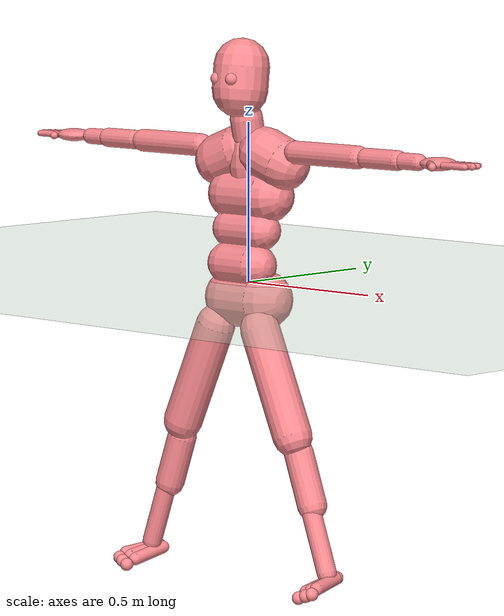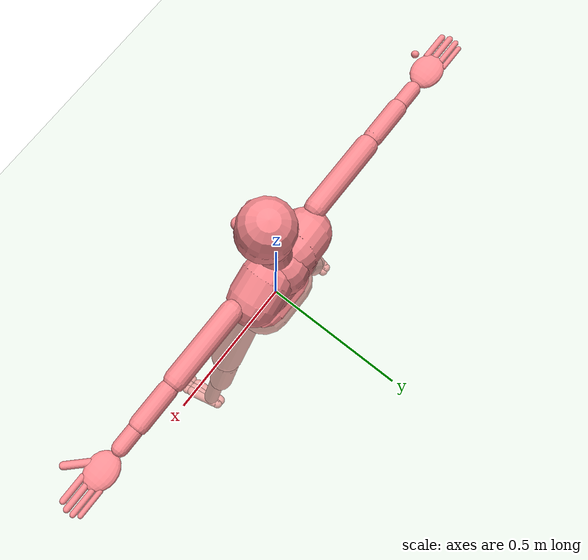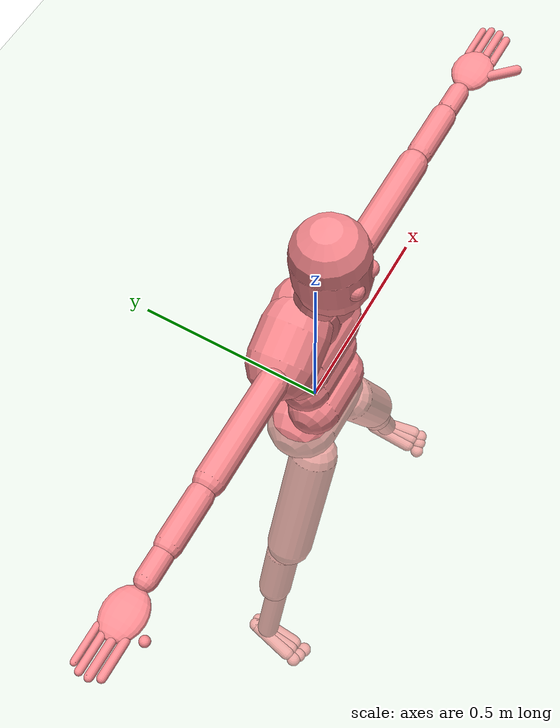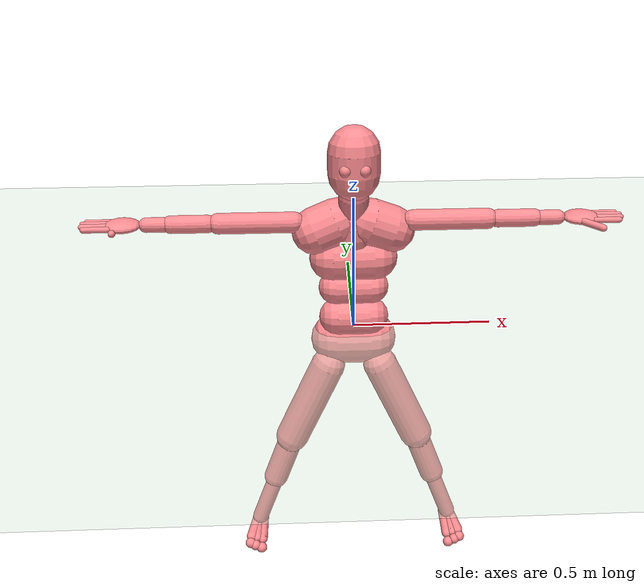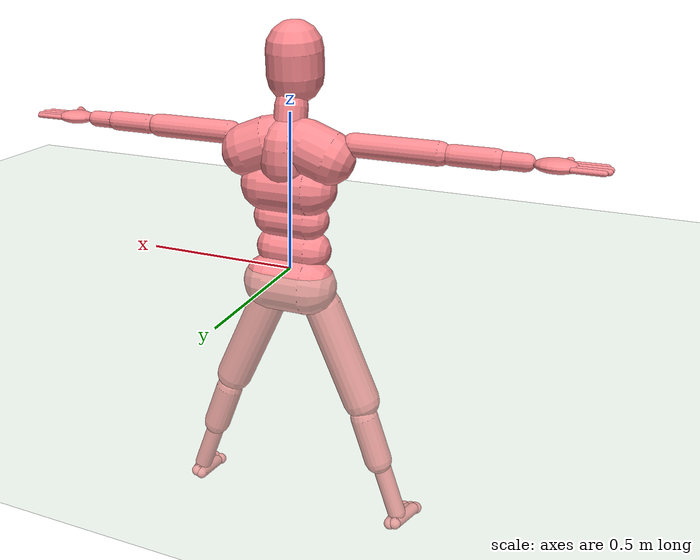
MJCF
<?xml version='1.0' encoding='utf-8'?>
<mujoco model="humanoid">
  <include file="./common/materials.xml" /><compiler angle="radian" inertiafromgeom="false" coordinate="local" />
  <option timestep="0.00222222" />
  <size nuser_body="3" />
  <statistic extent="3" center="0 0 1" />
  <default class="main">
    <joint limited="true" solimplimit="0 0.99 0.01 0.5 2" />
    <geom contype="7" conaffinity="7" condim="1" margin="0.001" material="self" rgba="0.98 0.54 0.56 1" />
  </default>
  <worldbody>
    <geom name="floor" size="121.43 121.43 0.242861" type="plane" condim="3" friction="1 0.1 0.1" material="grid_new" rgba="0.8 0.9 0.8 1" />
    <camera name="back" pos="0 3 2.4" quat="0 0 0.525731 0.850651" mode="trackcom" />
    <camera name="side" pos="-3 0 2.4" quat="0.601501 0.371748 -0.371748 -0.601501" mode="trackcom" />
    <light name="tracking_light" pos="0 0 7" dir="0 0 -1" mode="trackcom" />
    <body name="root" pos="0 0 0" quat="0.707107 0.707107 0 0">
      <joint name="root" limited="false" type="free" />
      <geom name="root_geom" size="0.0933877 0.0622584" pos="0 -0.051882 0" quat="0.707107 0 -0.707107 0" type="capsule" />
      <body name="lhipjoint" pos="0 0 0">
        <geom name="lhipjoint" size="0.00830112 0.0228281" pos="0.0529197 -0.0477315 0.025941" quat="0.5708 -0.566602 -0.594264 0" type="capsule" />
        <body name="lfemur" pos="0.105839 -0.0954629 0.051882" quat="0.985255 0 0 0.17109">
          <joint name="lfemur_z" pos="0 0 0" axis="0 0 1" range="-1.0472 1.22173" />
          <joint name="lfemur_y" pos="0 0 0" axis="0 1 0" range="-1.22173 1.22173" />
          <joint name="lfemur_x" pos="0 0 0" axis="1 0 0" range="-2.79253 0.349066" />
          <geom name="lfemur" size="0.0622584 0.176399" pos="-0.0103764 -0.210094 0" quat="0.700007 -0.700007 -0.122801 -0.0700007" type="capsule" />
          <body name="ltibia" pos="0 -0.420187 0">
            <joint name="ltibia_x" pos="0 0 0" axis="1 0 0" range="0.0174533 2.96706" />
            <geom name="ltibia" size="0.0311292 0.189433" pos="0 -0.210481 0" quat="0.696471 -0.696471 -0.122181 -0.122181" type="capsule" />
            <geom name="lcalf" size="0.0466938 0.0830112" pos="0 -0.103764 -0.0103764" quat="0.696471 -0.696471 -0.122181 -0.122181" type="capsule" />
            <body name="lfoot" pos="0 -0.420964 0" quat="0.707107 -0.707107 0 0">
              <joint name="lfoot_z" pos="0 0 0" axis="0 0 1" range="-1.22173 0.349066" />
              <joint name="lfoot_y" pos="0 0 0" axis="0 -1 0" range="-0.785398 0.785398" />
              <joint name="lfoot_x" pos="0 0 0" axis="1 0 0" range="-0.785398 1.5708" />
              <geom name="lfoot0" size="0.0207528 0.0622584" pos="-0.0207528 -0.0238657 -0.0103764" quat="0.64269 0.765928 -0.0112182 -0.0133693" type="capsule" />
              <geom name="lfoot1" size="0.0207528 0.0622584" pos="0 -0.0238657 -0.0103764" quat="0.642788 0.766044 0 0" type="capsule" />
              <geom name="lfoot2" size="0.0207528 0.0622584" pos="0.0103764 -0.0238657 -0.0103764" quat="0.640342 0.763129 0.0560226 0.0667652" type="capsule" />
              <body name="ltoes" pos="0 -0.110376 -0.0236329">
                <geom name="ltoes0" size="0.0207528" pos="-0.025941 -0.0103764 -0.0103764" />
                <geom name="ltoes1" size="0.0207528" pos="0 -0.0051882 -0.0103764" />
                <geom name="ltoes2" size="0.0207528" pos="0.0207528 0.00103764 -0.0103764" />
              </body>
            <inertial pos="-0.0207528 -0.0238657 -0.0103764" mass="1.0875000000000001" diaginertia="0.0009510698093295147 0.00047553490466475723 0.0009510698093295145" quat="0.6427857572997792 0.7660421185293779 0.0015669716542881045 0.0018674719293032488" /></body>
          <inertial pos="0.0 -0.197788989 7.045481420497879e-19" mass="3.4875" diaginertia="0.011975831051003232 0.005707019819504555 0.011975831051003232" quat="1.0 0.0 0.0 0.0" /></body>
        <inertial pos="-0.011250054632656874 -0.19830821611815216 -0.00012031458141784383" mass="7.5" diaginertia="0.02539535221798813 0.025395352217988127 0.014535406389599995" quat="0.4978262823699484 0.45432009147272157 0.5371249943756057 -0.5072070459713073" /></body>
      </body>
      <body name="rhipjoint" pos="0 0 0">
        <geom name="rhipjoint" size="0.00830112 0.0228281" pos="-0.0529197 -0.0477315 0.025941" quat="0.574856 -0.547594 0.608014 0" type="capsule" />
        <body name="rfemur" pos="-0.105839 -0.0954629 0.051882" quat="0.985255 0 0 -0.17109">
          <joint name="rfemur_z" pos="0 0 0" axis="0 0 1" range="-1.22173 1.0472" />
          <joint name="rfemur_y" pos="0 0 0" axis="0 1 0" range="-1.22173 1.22173" />
          <joint name="rfemur_x" pos="0 0 0" axis="1 0 0" range="-2.79253 0.349066" />
          <geom name="rfemur" size="0.0622584 0.176399" pos="0.0103764 -0.210094 0" quat="0.700007 -0.700007 0.122801 0.0700007" type="capsule" />
          <body name="rtibia" pos="0 -0.420187 0">
            <joint name="rtibia_x" pos="0 0 0" axis="1 0 0" range="0.0174533 2.96706" />
            <geom name="rtibia" size="0.0311292 0.189433" pos="0 -0.210481 0" quat="0.696471 -0.696471 0.122181 0.122181" type="capsule" />
            <geom name="rcalf" size="0.0466938 0.0830112" pos="0 -0.103764 -0.0103764" quat="0.696471 -0.696471 -0.122181 -0.122181" type="capsule" />
            <body name="rfoot" pos="0 -0.420964 0" quat="0.707107 -0.707107 0 0">
              <joint name="rfoot_z" pos="0 0 0" axis="0 0 1" range="-0.349066 1.22173" />
              <joint name="rfoot_y" pos="0 0 0" axis="0 -1 0" range="-0.785398 0.785398" />
              <joint name="rfoot_x" pos="0 0 0" axis="1 0 0" range="-0.785398 1.5708" />
              <geom name="rfoot0" size="0.0207528 0.0622584" pos="0.0207528 -0.0238657 -0.0103764" quat="0.64269 0.765928 0.0112182 0.0133693" type="capsule" />
              <geom name="rfoot1" size="0.0207528 0.0622584" pos="0 -0.0238657 -0.0103764" quat="0.642788 0.766044 0 0" type="capsule" />
              <geom name="rfoot2" size="0.0207528 0.0622584" pos="-0.0103764 -0.0238657 -0.0103764" quat="0.640342 0.763129 -0.0560226 -0.0667652" type="capsule" />
              <body name="rtoes" pos="0 -0.110376 -0.0236329">
                <geom name="rtoes0" size="0.0207528" pos="0.025941 -0.0103764 -0.0103764" />
                <geom name="rtoes1" size="0.0207528" pos="0 -0.0051882 -0.0103764" />
                <geom name="rtoes2" size="0.0207528" pos="-0.0207528 0.00103764 -0.0103764" />
              </body>
            <inertial pos="0.0207528 -0.0238657 -0.0103764" mass="1.0875000000000001" diaginertia="0.0009510698093295147 0.00047553490466475723 0.0009510698093295145" quat="0.6427857572997792 0.7660421185293779 -0.0015669716542881045 -0.0018674719293032488" /></body>
          <inertial pos="0.0 -0.197788989 7.045481420497879e-19" mass="3.4875" diaginertia="0.011975831051003232 0.005707019819504555 0.011975831051003232" quat="1.0 -1.1102230246251565e-16 -0.0 0.0" /></body>
        <inertial pos="0.011250054632656874 -0.19830821611815216 -0.00012031458141784383" mass="7.5" diaginertia="0.02539535221798813 0.025395352217988127 0.014535406389599995" quat="0.5072070459713073 0.5371249943756057 0.45432009147272157 -0.4978262823699484" /></body>
      </body>
      <body name="lowerback" pos="0 0 0">
        <geom name="lowerback" size="0.0674466 0.0570702" pos="0 0.0581079 0.0311292" quat="0.707107 0 0.707107 0" type="capsule" />
        <body name="upperback" pos="0 0.103764 -0.0103764">
          <joint name="upperback_z" pos="0 0 0" axis="0 0 1" range="-0.523599 0.523599" />
          <joint name="upperback_y" pos="0 0 0" axis="0 1 0" range="-0.523599 0.523599" />
          <joint name="upperback_x" pos="0 0 0" axis="1 0 0" range="-0.349066 0.785398" />
          <geom name="upperback" size="0.0622584 0.0622584" pos="0 0.0622584 0.0207528" quat="0.707107 0 0.707107 0" type="capsule" />
          <body name="thorax" pos="0.00053182 0.117834 0.000972084">
            <geom name="thorax" size="0.0830112 0.0726348" pos="0 0.051882 0" quat="0.707107 0 0.707107 0" type="capsule" />
            <body name="lowerneck" pos="0 0.118234 0.00485654">
              <joint name="lowerneck_z" pos="0 0 0" axis="0 0 1" range="-0.523599 0.523599" />
              <joint name="lowerneck_y" pos="0 0 0" axis="0 1 0" range="-0.523599 0.523599" />
              <joint name="lowerneck_x" pos="0 0 0" axis="1 0 0" range="-0.349066 0.785398" />
              <geom name="lowerneck" size="0.0830112 0.0207528" pos="0 0.0415056 -0.0207528" quat="0.707107 0.707107 0 0" type="capsule" />
              <body name="upperneck" pos="0 0.0933877 0.0103764">
                <geom name="upperneck" size="0.051882 0.0311292" pos="0 0.051882 0" quat="0.624695 0.780869 0 0" type="capsule" />
                <body name="head" pos="0 0.0933877 0">
                  <geom name="head" size="0.0881995 0.0363174" pos="0 0.11414 0.0311292" quat="0.743294 0.668965 0 0" type="capsule" />
                  <geom name="leye" size="0.0207528" pos="0.0311292 0.11414 0.103764" />
                  <geom name="reye" size="0.0207528" pos="-0.0311292 0.11414 0.103764" />
                  <camera name="egocentric" pos="0 0 0" quat="0 0 1 0" fovy="80" />
                </body>
              </body>
            <inertial pos="0.0 0.0415056 -0.0207528" mass="6.075" diaginertia="0.031134702640553204 0.031134702640553204 0.031134702640553204" quat="-0.5 0.5 0.5 0.5" /></body>
            <body name="lclavicle" pos="0 0.118234 0.00485654">
              <joint name="lclavicle_z" pos="0 0 0" axis="0 0 1" range="0 0.349066" />
              <joint name="lclavicle_y" pos="0 0 0" axis="0 1 0" range="-0.349066 0.174533" />
              <geom name="lclavicle" size="0.0830112 0.0415056" pos="0.0933877 0.051882 -0.0103764" quat="0.680414 0 -0.680414 -0.272166" type="capsule" />
              <body name="lhumerus" pos="0.189888 0.0788607 0.0103764" quat="0.180943 0.683564 -0.683564 0.180943">
                <joint name="lhumerus_z" pos="0 0 0" axis="0 0 1" range="-1.5708 1.5708" />
                <joint name="lhumerus_y" pos="0 0 0" axis="0 1 0" range="-1.5708 1.5708" />
                <joint name="lhumerus_x" pos="0 0 0" axis="1 0 0" range="-1.0472 1.5708" />
                <geom name="lhumerus" size="0.0363174 0.128667" pos="0 -0.143194 0" quat="0.613817 -0.613817 0.351039 0.351039" type="capsule" />
                <body name="lradius" pos="0 -0.287426 0">
                  <joint name="lradius_x" pos="0 0 0" axis="1 0 0" range="-0.174533 2.96706" />
                  <geom name="lradius" size="0.0311292 0.0622584" pos="0 -0.0830112 0" quat="0.613817 -0.613817 0.351039 0.351039" type="capsule" />
                  <body name="lwrist" pos="0 -0.176399 0" quat="-0.500011 0 0.866019 0">
                    <geom name="lwrist" size="0.025941 0.0311292" pos="0 -0.0207528 0" quat="0 0 -0.707107 -0.707107" type="capsule" />
                    <body name="lhand" pos="0 -0.0830112 0">
                      <geom name="lhand" size="0.0498067 0.0207528 0.0622584" pos="0 -0.0487691 0" quat="0 0 -0.707107 -0.707107" type="ellipsoid" />
                      <body name="lfingers" pos="0 -0.0830112 0">
                        <geom name="lfinger0" size="0.0103764 0.0415056" pos="-0.0311292 -0.051882 0" quat="0.707107 -0.707107 0 0" type="capsule" />
                        <geom name="lfinger1" size="0.0103764 0.0415056" pos="-0.00830112 -0.0622584 0" quat="0.707107 -0.707107 0 0" type="capsule" />
                        <geom name="lfinger2" size="0.00933877 0.0415056" pos="0.014527 -0.0622584 0" quat="0.707107 -0.707107 0 0" type="capsule" />
                        <geom name="lfinger3" size="0.00830112 0.0415056" pos="0.0332045 -0.051882 0" quat="0.707107 -0.707107 0 0" type="capsule" />
                      </body>
                      <body name="lthumb" pos="-0.0207528 -0.0311292 0" quat="0.92388 0 0 -0.382683">
                        <geom name="lthumb" size="0.0124517 0.0415056" pos="0 -0.0622584 0" quat="0 0 -0.707107 -0.707107" type="capsule" />
                      </body>
                    </body>
                  <inertial pos="0.0 -0.0207528 0.0" mass="0.45" diaginertia="0.0004067758002002571 0.0004067758002002571 0.0004067758002002571" quat="-0.5 0.5 0.5 0.5" /></body>
                <inertial pos="0.0 -0.078653112 2.4192248204713e-19" mass="1.2" diaginertia="0.0005814162555840001 0.0004498254772901844 0.0004498254772901843" quat="-2.3551386880256624e-16 0.7071067811865475 0.7071067811865475 2.3551386880256624e-16" /></body>
              <inertial pos="0.0 -0.134959312 4.571170109102241e-19" mass="2.1" diaginertia="0.003747070153462484 0.0037470701534624835 0.0018023344859510303" quat="0.5 0.5 0.5 -0.5" /></body>
            <inertial pos="0.0933877 0.051882 -0.0103764" mass="0.075" diaginertia="2.0532241200268308e-05 2.0532241200268305e-05 2.0532241200268308e-05" quat="0.1643089949583741 0.6877518114667303 0.1643089949583741 0.6877518114667303" /></body>
            <body name="rclavicle" pos="0 0.118234 0.00485654">
              <joint name="rclavicle_z" pos="0 0 0" axis="0 0 1" range="-0.349066 0" />
              <joint name="rclavicle_y" pos="0 0 0" axis="0 1 0" range="-0.174533 0.349066" />
              <geom name="rclavicle" size="0.0830112 0.0415056" pos="-0.0933877 0.051882 -0.0103764" quat="0.680414 0 -0.680414 0.272166" type="capsule" />
              <body name="rhumerus" pos="-0.189888 0.0788607 0.0103764" quat="0.180943 0.683564 0.683564 -0.180943">
                <joint name="rhumerus_z" pos="0 0 0" axis="0 0 1" range="-1.5708 1.5708" />
                <joint name="rhumerus_y" pos="0 0 0" axis="0 1 0" range="-1.5708 1.5708" />
                <joint name="rhumerus_x" pos="0 0 0" axis="1 0 0" range="-1.0472 1.5708" />
                <geom name="rhumerus" size="0.0363174 0.128667" pos="0 -0.143194 0" quat="0.613321 -0.613321 -0.351905 -0.351905" type="capsule" />
                <body name="rradius" pos="0 -0.287426 0">
                  <joint name="rradius_x" pos="0 0 0" axis="1 0 0" range="-0.174533 2.96706" />
                  <geom name="rradius" size="0.0311292 0.0622584" pos="0 -0.0830112 0" quat="0.613817 -0.613817 -0.351039 -0.351039" type="capsule" />
                  <body name="rwrist" pos="0 -0.176399 0" quat="-0.500011 0 -0.866019 0">
                    <geom name="rwrist" size="0.025941 0.0311292" pos="0 -0.0207528 0" quat="0 0 0.707107 0.707107" type="capsule" />
                    <body name="rhand" pos="0 -0.0830112 0">
                      <geom name="rhand" size="0.0498067 0.0207528 0.0622584" pos="0 -0.0487691 0" quat="0 0 0.707107 0.707107" type="ellipsoid" />
                      <body name="rfingers" pos="0 -0.0830112 0">
                        <geom name="rfinger0" size="0.0103764 0.0415056" pos="0.0311292 -0.051882 0" quat="0.707107 -0.707107 0 0" type="capsule" />
                        <geom name="rfinger1" size="0.0103764 0.0415056" pos="0.00830112 -0.0622584 0" quat="0.707107 -0.707107 0 0" type="capsule" />
                        <geom name="rfinger2" size="0.00933877 0.0415056" pos="-0.014527 -0.0622584 0" quat="0.707107 -0.707107 0 0" type="capsule" />
                        <geom name="rfinger3" size="0.00830112 0.0415056" pos="-0.0332045 -0.051882 0" quat="0.707107 -0.707107 0 0" type="capsule" />
                      </body>
                      <body name="rthumb" pos="0.0207528 -0.0311292 0" quat="0.92388 0 0 0.382683">
                        <geom name="rthumb" size="0.0124517" pos="0 -0.0622584 0" quat="0 0 0.707107 0.707107" />
                      </body>
                    </body>
                  <inertial pos="0.0 -0.0207528 0.0" mass="0.45" diaginertia="0.0004067758002002571 0.0004067758002002571 0.0004067758002002571" quat="-0.5 0.5 0.5 0.5" /></body>
                <inertial pos="0.0 -0.078653112 2.4192248204713e-19" mass="1.2" diaginertia="0.0005814162555840001 0.0004498254772901844 0.00044982547729018453" quat="-0.7071067811865475 -2.3551386880256624e-16 -2.3551386880256624e-16 0.7071067811865475" /></body>
              <inertial pos="0.0 -0.134959312 4.571170109102241e-19" mass="2.1" diaginertia="0.0037470701534624827 0.00180233448595103 0.0037470701534624822" quat="1.3877787807814457e-16 1.0 0.0 0.0" /></body>
            <inertial pos="-0.0933877 0.051882 -0.0103764" mass="0.075" diaginertia="2.0532241200268308e-05 2.0532241200268305e-05 2.0532241200268308e-05" quat="-0.1643089949583741 0.6877518114667303 -0.1643089949583741 0.6877518114667303" /></body>
          <inertial pos="0.0 0.051882 0.0" mass="16.2" diaginertia="0.15965870757328646 0.15965870757328646 0.15965870757328646" quat="-0.5 0.5 0.5 0.5" /></body>
        <inertial pos="0.0 0.0622584 0.0207528" mass="10.425" diaginertia="0.07658217406135236 0.07658217406135236 0.07658217406135236" quat="-0.5 0.5 0.5 0.5" /></body>
      </body>
    <inertial pos="0.0 -0.051882 0.0" mass="10.649999999999999" diaginertia="0.07935669971384628 0.07935669971384628 0.07935669971384628" quat="-0.5 0.5 0.5 0.5" /></body>
  </worldbody>
  <actuator>
    <general name="lfemur_z" joint="lfemur_z" />
    <general name="lfemur_y" joint="lfemur_y" />
    <general name="lfemur_x" joint="lfemur_x" />
    <general name="ltibia_x" joint="ltibia_x" />
    <general name="lfoot_z" joint="lfoot_z" />
    <general name="lfoot_y" joint="lfoot_y" />
    <general name="lfoot_x" joint="lfoot_x" />
    <general name="rfemur_z" joint="rfemur_z" />
    <general name="rfemur_y" joint="rfemur_y" />
    <general name="rfemur_x" joint="rfemur_x" />
    <general name="rtibia_x" joint="rtibia_x" />
    <general name="rfoot_z" joint="rfoot_z" />
    <general name="rfoot_y" joint="rfoot_y" />
    <general name="rfoot_x" joint="rfoot_x" />
    <general name="upperback_z" joint="upperback_z" />
    <general name="upperback_y" joint="upperback_y" />
    <general name="upperback_x" joint="upperback_x" />
    <general name="lowerneck_z" joint="lowerneck_z" />
    <general name="lowerneck_y" joint="lowerneck_y" />
    <general name="lowerneck_x" joint="lowerneck_x" />
    <general name="lclavicle_z" joint="lclavicle_z" />
    <general name="lclavicle_y" joint="lclavicle_y" />
    <general name="lhumerus_z" joint="lhumerus_z" />
    <general name="lhumerus_y" joint="lhumerus_y" />
    <general name="lhumerus_x" joint="lhumerus_x" />
    <general name="lradius_x" joint="lradius_x" />
    <general name="rclavicle_z" joint="rclavicle_z" />
    <general name="rclavicle_y" joint="rclavicle_y" />
    <general name="rhumerus_z" joint="rhumerus_z" />
    <general name="rhumerus_y" joint="rhumerus_y" />
    <general name="rhumerus_x" joint="rhumerus_x" />
    <general name="rradius_x" joint="rradius_x" />
  </actuator>
</mujoco>

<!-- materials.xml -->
<!--
Common textures, colors and materials to be used throughout this suite. Some
materials such as xxx_highlight are activated on occurence of certain events,
for example receiving a positive reward.
-->
<mujoco>
  <asset>
    <texture name="grid" type="2d" builtin="checker" rgb1=".1 .2 .3" rgb2=".2 .3 .4" width="300" height="300" mark="edge" markrgb=".2 .3 .4"/>
    <material name="grid" texture="grid" texrepeat="1 1" texuniform="true" reflectance=".2"/>
    <texture builtin="checker" height="100" name="texplane" rgb1="0 0 0" rgb2=".8 .8 .8" type="2d" width="100"/>
    <texture name="grass" file="./common/grass.png" type="2d"/>

    <texture name="grid_new" type="2d" builtin="checker" rgb1=".1 .3 .2" rgb2=".2 .4 .3" width="1000" height="1000" mark="none" markrgb=".8 .6 .4"/>
    <material name="grid_new" texture="grid_new" texrepeat="0.2 0.2" texuniform="true" reflectance=".2"/>
    <material name="MatPlane" reflectance="0.5" shininess="1" specular="1" texrepeat="60 60" texture="texplane"/>
    <material name="GrassPlane" reflectance="0.0" shininess="1" specular="1" texrepeat="400 400" texture="grass"/>
    <material name="self" rgba=".7 .5 .3 1"/>
    <material name="self_default" rgba=".7 .5 .3 1"/>
    <material name="self_highlight" rgba="0 .5 .3 1"/>
    <material name="effector" rgba=".7 .4 .2 1"/>
    <material name="effector_default" rgba=".7 .4 .2 1"/>
    <material name="effector_highlight" rgba="0 .5 .3 1"/>
    <material name="decoration" rgba=".3 .5 .7 1"/>
    <material name="eye" rgba="0 .2 1 1"/>
    <material name="target" rgba=".6 .3 .3 1"/>
    <material name="target_default" rgba=".6 .3 .3 1"/>
    <material name="target_highlight" rgba=".6 .3 .3 .4"/>
    <material name="expert" rgba=".6 .3 .3 .4"/>
  </asset>
</mujoco>
